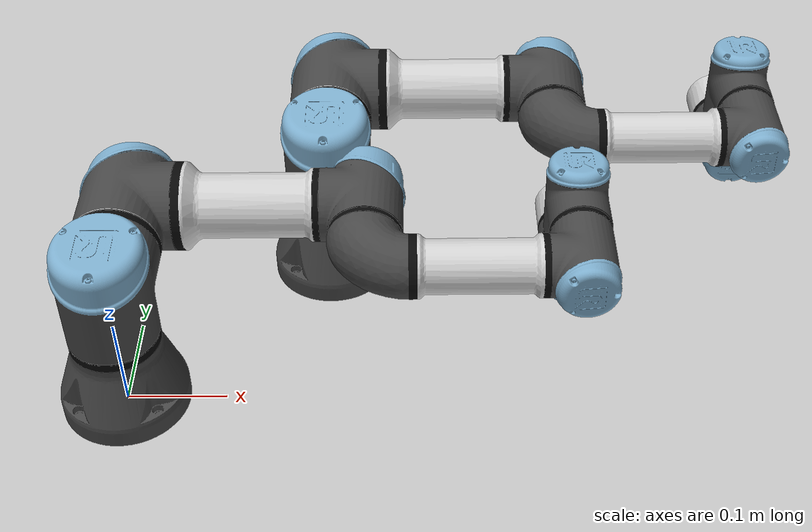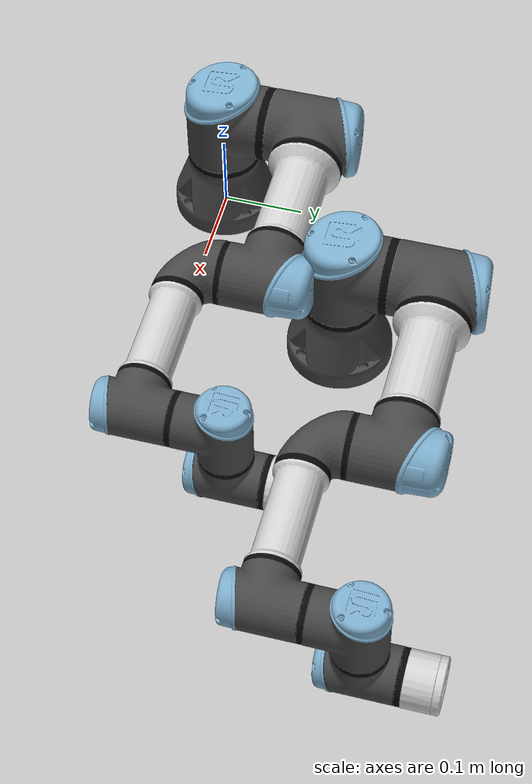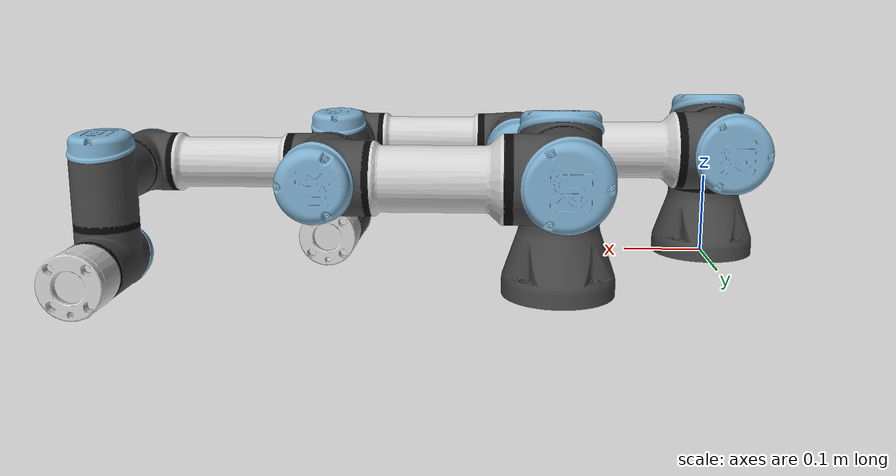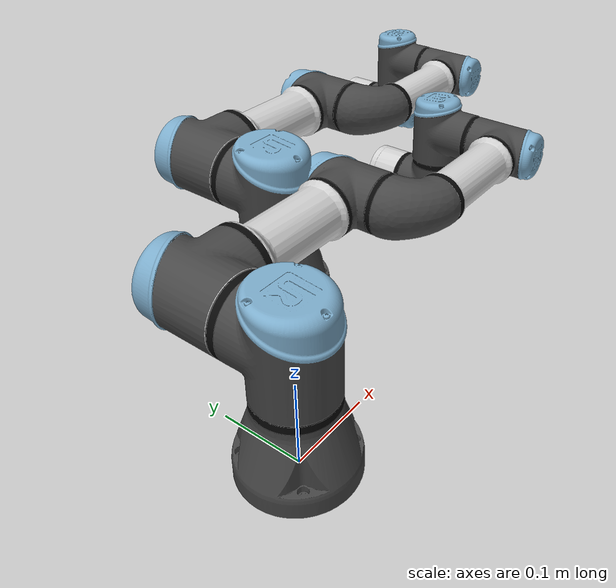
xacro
<?xml version="1.0"?>
<robot xmlns:xacro="http://www.ros.org/wiki/xacro" name="mutli_arm">
    <xacro:arg name="initial_positions_file" default="initial_positions.yaml" />

    <!-- Import mutli_arm urdf file -->
    <xacro:include filename="$(find multi_ur_description)/urdf/arm1g_transmission.urdf" />

    <!-- Import control_xacro -->
    <xacro:include filename="mutli_arm.ros2_control.xacro" />

</robot>

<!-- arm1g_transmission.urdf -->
<!-- |    This document was autogenerated by xacro from scripts/helpers/robot_description_template.xacro | -->
<!-- |    EDITING THIS FILE BY HAND IS NOT RECOMMENDED                                 | -->
<robot name="multi_arm">
  <!-- world reference frame -->
  <link name="world"/>
  <!-- Unified ros2_control for both arms -->
  <ros2_control name="multi_arm_controller_manager" type="system">
    <hardware>
      <plugin>ign_ros2_control/IgnitionSystem</plugin>
    </hardware>
    <!-- ARM 1 joints -->
    <joint name="arm1shoulder_pan_joint">
      <command_interface name="position"/>
      <command_interface name="velocity"/>
      <state_interface name="position">
        <!-- initial position for the FakeSystem and simulation -->
        <param name="initial_value">0.0</param>
      </state_interface>
      <state_interface name="velocity"/>
      <state_interface name="effort"/>
    </joint>
    <joint name="arm1shoulder_lift_joint">
      <command_interface name="position"/>
      <command_interface name="velocity"/>
      <state_interface name="position">
        <!-- initial position for the FakeSystem and simulation -->
        <param name="initial_value">-1.57</param>
      </state_interface>
      <state_interface name="velocity"/>
      <state_interface name="effort"/>
    </joint>
    <joint name="arm1elbow_joint">
      <command_interface name="position"/>
      <command_interface name="velocity"/>
      <state_interface name="position">
        <!-- initial position for the FakeSystem and simulation -->
        <param name="initial_value">0.0</param>
      </state_interface>
      <state_interface name="velocity"/>
      <state_interface name="effort"/>
    </joint>
    <joint name="arm1wrist_1_joint">
      <command_interface name="position"/>
      <command_interface name="velocity"/>
      <state_interface name="position">
        <!-- initial position for the FakeSystem and simulation -->
        <param name="initial_value">-1.57</param>
      </state_interface>
      <state_interface name="velocity"/>
      <state_interface name="effort"/>
    </joint>
    <joint name="arm1wrist_2_joint">
      <command_interface name="position"/>
      <command_interface name="velocity"/>
      <state_interface name="position">
        <!-- initial position for the FakeSystem and simulation -->
        <param name="initial_value">0.0</param>
      </state_interface>
      <state_interface name="velocity"/>
      <state_interface name="effort"/>
    </joint>
    <joint name="arm1wrist_3_joint">
      <command_interface name="position"/>
      <command_interface name="velocity"/>
      <state_interface name="position">
        <!-- initial position for the FakeSystem and simulation -->
        <param name="initial_value">0.0</param>
      </state_interface>
      <state_interface name="velocity"/>
      <state_interface name="effort"/>
    </joint>
    <!-- ARM 2 joints -->
    <joint name="arm2_shoulder_pan_joint">
      <command_interface name="position"/>
      <command_interface name="velocity"/>
      <state_interface name="position">
        <!-- initial position for the FakeSystem and simulation -->
        <param name="initial_value">0.0</param>
      </state_interface>
      <state_interface name="velocity"/>
      <state_interface name="effort"/>
    </joint>
    <joint name="arm2_shoulder_lift_joint">
      <command_interface name="position"/>
      <command_interface name="velocity"/>
      <state_interface name="position">
        <!-- initial position for the FakeSystem and simulation -->
        <param name="initial_value">-1.57</param>
      </state_interface>
      <state_interface name="velocity"/>
      <state_interface name="effort"/>
    </joint>
    <joint name="arm2_elbow_joint">
      <command_interface name="position"/>
      <command_interface name="velocity"/>
      <state_interface name="position">
        <!-- initial position for the FakeSystem and simulation -->
        <param name="initial_value">0.0</param>
      </state_interface>
      <state_interface name="velocity"/>
      <state_interface name="effort"/>
    </joint>
    <joint name="arm2_wrist_1_joint">
      <command_interface name="position"/>
      <command_interface name="velocity"/>
      <state_interface name="position">
        <!-- initial position for the FakeSystem and simulation -->
        <param name="initial_value">-1.57 </param>
      </state_interface>
      <state_interface name="velocity"/>
      <state_interface name="effort"/>
    </joint>
    <joint name="arm2_wrist_2_joint">
      <command_interface name="position"/>
      <command_interface name="velocity"/>
      <state_interface name="position">
        <!-- initial position for the FakeSystem and simulation -->
        <param name="initial_value">0.0</param>
      </state_interface>
      <state_interface name="velocity"/>
      <state_interface name="effort"/>
    </joint>
    <joint name="arm2_wrist_3_joint">
      <command_interface name="position"/>
      <command_interface name="velocity"/>
      <state_interface name="position">
        <!-- initial position for the FakeSystem and simulation -->
        <param name="initial_value">0.0</param>
      </state_interface>
      <state_interface name="velocity"/>
      <state_interface name="effort"/>
    </joint>
  </ros2_control>
  <transmission name="arm1shoulder_pan_trans">
    <type>transmission_interface/SimpleTransmission</type>
    <joint name="arm1shoulder_pan_joint">
      <hardwareInterface>hardware_interface/PositionJointInterface</hardwareInterface>
    </joint>
    <actuator name="arm1shoulder_pan_motor">
      <mechanicalReduction>1</mechanicalReduction>
    </actuator>
  </transmission>
  <transmission name="arm1shoulder_lift_trans">
    <type>transmission_interface/SimpleTransmission</type>
    <joint name="arm1shoulder_lift_joint">
      <hardwareInterface>hardware_interface/PositionJointInterface</hardwareInterface>
    </joint>
    <actuator name="arm1shoulder_lift_motor">
      <mechanicalReduction>1</mechanicalReduction>
    </actuator>
  </transmission>
  <transmission name="arm1elbow_trans">
    <type>transmission_interface/SimpleTransmission</type>
    <joint name="arm1elbow_joint">
      <hardwareInterface>hardware_interface/PositionJointInterface</hardwareInterface>
    </joint>
    <actuator name="arm1elbow_motor">
      <mechanicalReduction>1</mechanicalReduction>
    </actuator>
  </transmission>
  <transmission name="arm1wrist_1_trans">
    <type>transmission_interface/SimpleTransmission</type>
    <joint name="arm1wrist_1_joint">
      <hardwareInterface>hardware_interface/PositionJointInterface</hardwareInterface>
    </joint>
    <actuator name="arm1wrist_1_motor">
      <mechanicalReduction>1</mechanicalReduction>
    </actuator>
  </transmission>
  <transmission name="arm1wrist_2_trans">
    <type>transmission_interface/SimpleTransmission</type>
    <joint name="arm1wrist_2_joint">
      <hardwareInterface>hardware_interface/PositionJointInterface</hardwareInterface>
    </joint>
    <actuator name="arm1wrist_2_motor">
      <mechanicalReduction>1</mechanicalReduction>
    </actuator>
  </transmission>
  <transmission name="arm1wrist_3_trans">
    <type>transmission_interface/SimpleTransmission</type>
    <joint name="arm1wrist_3_joint">
      <hardwareInterface>hardware_interface/PositionJointInterface</hardwareInterface>
    </joint>
    <actuator name="arm1wrist_3_motor">
      <mechanicalReduction>1</mechanicalReduction>
    </actuator>
  </transmission>
  <!-- Placeholder for ros2_control transmission which don't yet exist -->
  <!-- links -  main serial chain -->
  <link name="arm1base_link"/>
  <link name="arm1base_link_inertia">
    <visual>
      <origin rpy="0 0 3.141592653589793" xyz="0 0 0"/>
      <geometry>
        <mesh filename="file:///home/roman/code/cps-gazebo-sim-2/install/multi_ur_description/share/multi_ur_description/meshes/ur3e/visual/base.dae"/>
      </geometry>
    </visual>
    <collision>
      <origin rpy="0 0 3.141592653589793" xyz="0 0 0"/>
      <geometry>
        <mesh filename="file:///home/roman/code/cps-gazebo-sim-2/install/multi_ur_description/share/multi_ur_description/meshes/ur3e/collision/base.stl"/>
      </geometry>
    </collision>
    <inertial>
      <mass value="2.0"/>
      <origin rpy="0 0 0" xyz="0 0 0"/>
      <inertia ixx="0.0030531654454" ixy="0.0" ixz="0.0" iyy="0.0030531654454" iyz="0.0" izz="0.005625"/>
    </inertial>
  </link>
  <link name="arm1shoulder_link">
    <visual>
      <origin rpy="0 0 3.141592653589793" xyz="0 0 0"/>
      <geometry>
        <mesh filename="file:///home/roman/code/cps-gazebo-sim-2/install/multi_ur_description/share/multi_ur_description/meshes/ur3e/visual/shoulder.dae"/>
      </geometry>
    </visual>
    <collision>
      <origin rpy="0 0 3.141592653589793" xyz="0 0 0"/>
      <geometry>
        <mesh filename="file:///home/roman/code/cps-gazebo-sim-2/install/multi_ur_description/share/multi_ur_description/meshes/ur3e/collision/shoulder.stl"/>
      </geometry>
    </collision>
    <inertial>
      <mass value="2.0"/>
      <origin rpy="0 0 0" xyz="0 0 0"/>
      <inertia ixx="0.008093163429399999" ixy="0.0" ixz="0.0" iyy="0.008093163429399999" iyz="0.0" izz="0.005625"/>
    </inertial>
  </link>
  <link name="arm1upper_arm_link">
    <visual>
      <origin rpy="1.5707963267948966 0 -1.5707963267948966" xyz="0 0 0.12"/>
      <geometry>
        <mesh filename="file:///home/roman/code/cps-gazebo-sim-2/install/multi_ur_description/share/multi_ur_description/meshes/ur3e/visual/upperarm.dae"/>
      </geometry>
    </visual>
    <collision>
      <origin rpy="1.5707963267948966 0 -1.5707963267948966" xyz="0 0 0.12"/>
      <geometry>
        <mesh filename="file:///home/roman/code/cps-gazebo-sim-2/install/multi_ur_description/share/multi_ur_description/meshes/ur3e/collision/upperarm.stl"/>
      </geometry>
    </collision>
    <inertial>
      <mass value="3.42"/>
      <origin rpy="0 1.5707963267948966 0" xyz="-0.121825 0.0 0.12"/>
      <inertia ixx="0.021728483221103233" ixy="0.0" ixz="0.0" iyy="0.021728483221103233" iyz="0.0" izz="0.00961875"/>
    </inertial>
  </link>
  <link name="arm1forearm_link">
    <visual>
      <origin rpy="1.5707963267948966 0 -1.5707963267948966" xyz="0 0 0.027"/>
      <geometry>
        <mesh filename="file:///home/roman/code/cps-gazebo-sim-2/install/multi_ur_description/share/multi_ur_description/meshes/ur3e/visual/forearm.dae"/>
      </geometry>
    </visual>
    <collision>
      <origin rpy="1.5707963267948966 0 -1.5707963267948966" xyz="0 0 0.027"/>
      <geometry>
        <mesh filename="file:///home/roman/code/cps-gazebo-sim-2/install/multi_ur_description/share/multi_ur_description/meshes/ur3e/collision/forearm.stl"/>
      </geometry>
    </collision>
    <inertial>
      <mass value="1.26"/>
      <origin rpy="0 1.5707963267948966 0" xyz="-0.1066 0.0 0.027"/>
      <inertia ixx="0.0065445675821719194" ixy="0.0" ixz="0.0" iyy="0.0065445675821719194" iyz="0.0" izz="0.00354375"/>
    </inertial>
  </link>
  <link name="arm1wrist_1_link">
    <visual>
      <origin rpy="1.5707963267948966 0 0" xyz="0 0 -0.104"/>
      <geometry>
        <mesh filename="file:///home/roman/code/cps-gazebo-sim-2/install/multi_ur_description/share/multi_ur_description/meshes/ur3e/visual/wrist1.dae"/>
      </geometry>
    </visual>
    <collision>
      <origin rpy="1.5707963267948966 0 0" xyz="0 0 -0.104"/>
      <geometry>
        <mesh filename="file:///home/roman/code/cps-gazebo-sim-2/install/multi_ur_description/share/multi_ur_description/meshes/ur3e/collision/wrist1.stl"/>
      </geometry>
    </collision>
    <inertial>
      <mass value="0.8"/>
      <origin rpy="0 0 0" xyz="0 0 0"/>
      <inertia ixx="0.002084999166" ixy="0.0" ixz="0.0" iyy="0.002084999166" iyz="0.0" izz="0.00225"/>
    </inertial>
  </link>
  <link name="arm1wrist_2_link">
    <visual>
      <origin rpy="0 0 0" xyz="0 0 -0.08535"/>
      <geometry>
        <mesh filename="file:///home/roman/code/cps-gazebo-sim-2/install/multi_ur_description/share/multi_ur_description/meshes/ur3e/visual/wrist2.dae"/>
      </geometry>
    </visual>
    <collision>
      <origin rpy="0 0 0" xyz="0 0 -0.08535"/>
      <geometry>
        <mesh filename="file:///home/roman/code/cps-gazebo-sim-2/install/multi_ur_description/share/multi_ur_description/meshes/ur3e/collision/wrist2.stl"/>
      </geometry>
    </collision>
    <inertial>
      <mass value="0.8"/>
      <origin rpy="0 0 0" xyz="0 0 0"/>
      <inertia ixx="0.002084999166" ixy="0.0" ixz="0.0" iyy="0.002084999166" iyz="0.0" izz="0.00225"/>
    </inertial>
  </link>
  <link name="arm1wrist_3_link">
    <visual>
      <origin rpy="1.5707963267948966 0 0" xyz="0 0 -0.0921"/>
      <geometry>
        <mesh filename="file:///home/roman/code/cps-gazebo-sim-2/install/multi_ur_description/share/multi_ur_description/meshes/ur3e/visual/wrist3.dae"/>
      </geometry>
    </visual>
    <collision>
      <origin rpy="1.5707963267948966 0 0" xyz="0 0 -0.0921"/>
      <geometry>
        <mesh filename="file:///home/roman/code/cps-gazebo-sim-2/install/multi_ur_description/share/multi_ur_description/meshes/ur3e/collision/wrist3.stl"/>
      </geometry>
    </collision>
    <inertial>
      <mass value="0.35"/>
      <origin rpy="0 0 0" xyz="0.0 0.0 -0.02"/>
      <inertia ixx="0.00013626661215999998" ixy="0.0" ixz="0.0" iyy="0.00013626661215999998" iyz="0.0" izz="0.0001792"/>
    </inertial>
  </link>
  <!-- base_joint fixes base_link to the environment -->
  <joint name="arm1base_joint" type="fixed">
    <origin rpy="0 0 0.0" xyz="0 0 0.0"/>
    <parent link="world"/>
    <child link="arm1base_link"/>
  </joint>
  <!-- joints - main serial chain -->
  <joint name="arm1base_link-base_link_inertia" type="fixed">
    <parent link="arm1base_link"/>
    <child link="arm1base_link_inertia"/>
    <origin rpy="0 0 3.141592653589793" xyz="0 0 0"/>
  </joint>
  <joint name="arm1shoulder_pan_joint" type="revolute">
    <parent link="arm1base_link_inertia"/>
    <child link="arm1shoulder_link"/>
    <origin rpy="0 0 0" xyz="0 0 0.15185"/>
    <axis xyz="0 0 1"/>
    <limit effort="56.0" lower="-6.283185307179586" upper="6.283185307179586" velocity="3.141592653589793"/>
    <dynamics damping="0" friction="0"/>
  </joint>
  <joint name="arm1shoulder_lift_joint" type="revolute">
    <parent link="arm1shoulder_link"/>
    <child link="arm1upper_arm_link"/>
    <origin rpy="1.570796327 0 0" xyz="0 0 0"/>
    <axis xyz="0 0 1"/>
    <limit effort="56.0" lower="-6.283185307179586" upper="6.283185307179586" velocity="3.141592653589793"/>
    <dynamics damping="0" friction="0"/>
  </joint>
  <joint name="arm1elbow_joint" type="revolute">
    <parent link="arm1upper_arm_link"/>
    <child link="arm1forearm_link"/>
    <origin rpy="0 0 0" xyz="-0.24355 0 0"/>
    <axis xyz="0 0 1"/>
    <limit effort="28.0" lower="-3.141592653589793" upper="3.141592653589793" velocity="3.141592653589793"/>
    <dynamics damping="0" friction="0"/>
  </joint>
  <joint name="arm1wrist_1_joint" type="revolute">
    <parent link="arm1forearm_link"/>
    <child link="arm1wrist_1_link"/>
    <origin rpy="0 0 0" xyz="-0.2132 0 0.13105"/>
    <axis xyz="0 0 1"/>
    <limit effort="12.0" lower="-6.283185307179586" upper="6.283185307179586" velocity="6.283185307179586"/>
    <dynamics damping="0" friction="0"/>
  </joint>
  <joint name="arm1wrist_2_joint" type="revolute">
    <parent link="arm1wrist_1_link"/>
    <child link="arm1wrist_2_link"/>
    <origin rpy="1.570796327 0 0" xyz="0 -0.08535 -1.750557762378351e-11"/>
    <axis xyz="0 0 1"/>
    <limit effort="12.0" lower="-6.283185307179586" upper="6.283185307179586" velocity="6.283185307179586"/>
    <dynamics damping="0" friction="0"/>
  </joint>
  <joint name="arm1wrist_3_joint" type="revolute">
    <parent link="arm1wrist_2_link"/>
    <child link="arm1wrist_3_link"/>
    <origin rpy="1.570796326589793 3.141592653589793 3.141592653589793" xyz="0 0.0921 -1.8890025766262e-11"/>
    <axis xyz="0 0 1"/>
    <limit effort="12.0" lower="-6.283185307179586" upper="6.283185307179586" velocity="6.283185307179586"/>
    <dynamics damping="0" friction="0"/>
  </joint>
  <link name="arm1ft_frame"/>
  <joint name="arm1wrist_3_link-ft_frame" type="fixed">
    <parent link="arm1wrist_3_link"/>
    <child link="arm1ft_frame"/>
    <origin rpy="3.141592653589793 0 0" xyz="0 0 0"/>
  </joint>
  <!-- ROS-Industrial 'base' frame - base_link to UR 'Base' Coordinates transform -->
  <link name="arm1base"/>
  <joint name="arm1base_link-base_fixed_joint" type="fixed">
    <origin rpy="0 0 3.141592653589793" xyz="0 0 0"/>
    <parent link="arm1base_link"/>
    <child link="arm1base"/>
  </joint>
  <!-- ROS-Industrial 'flange' frame - attachment point for EEF models -->
  <link name="arm1flange"/>
  <joint name="arm1wrist_3-flange" type="fixed">
    <parent link="arm1wrist_3_link"/>
    <child link="arm1flange"/>
    <origin rpy="0 -1.5707963267948966 -1.5707963267948966" xyz="0 0 0"/>
  </joint>
  <!-- ROS-Industrial 'tool0' frame - all-zeros tool frame -->
  <link name="arm1tool0"/>
  <joint name="arm1flange-tool0" type="fixed">
    <!-- default toolframe - X+ left, Y+ up, Z+ front -->
    <origin rpy="1.5707963267948966 0 1.5707963267948966" xyz="0 0 0"/>
    <parent link="arm1flange"/>
    <child link="arm1tool0"/>
  </joint>
  <transmission name="arm2_shoulder_pan_trans">
    <type>transmission_interface/SimpleTransmission</type>
    <joint name="arm2_shoulder_pan_joint">
      <hardwareInterface>hardware_interface/PositionJointInterface</hardwareInterface>
    </joint>
    <actuator name="arm2_shoulder_pan_motor">
      <mechanicalReduction>1</mechanicalReduction>
    </actuator>
  </transmission>
  <transmission name="arm2_shoulder_lift_trans">
    <type>transmission_interface/SimpleTransmission</type>
    <joint name="arm2_shoulder_lift_joint">
      <hardwareInterface>hardware_interface/PositionJointInterface</hardwareInterface>
    </joint>
    <actuator name="arm2_shoulder_lift_motor">
      <mechanicalReduction>1</mechanicalReduction>
    </actuator>
  </transmission>
  <transmission name="arm2_elbow_trans">
    <type>transmission_interface/SimpleTransmission</type>
    <joint name="arm2_elbow_joint">
      <hardwareInterface>hardware_interface/PositionJointInterface</hardwareInterface>
    </joint>
    <actuator name="arm2_elbow_motor">
      <mechanicalReduction>1</mechanicalReduction>
    </actuator>
  </transmission>
  <transmission name="arm2_wrist_1_trans">
    <type>transmission_interface/SimpleTransmission</type>
    <joint name="arm2_wrist_1_joint">
      <hardwareInterface>hardware_interface/PositionJointInterface</hardwareInterface>
    </joint>
    <actuator name="arm2_wrist_1_motor">
      <mechanicalReduction>1</mechanicalReduction>
    </actuator>
  </transmission>
  <transmission name="arm2_wrist_2_trans">
    <type>transmission_interface/SimpleTransmission</type>
    <joint name="arm2_wrist_2_joint">
      <hardwareInterface>hardware_interface/PositionJointInterface</hardwareInterface>
    </joint>
    <actuator name="arm2_wrist_2_motor">
      <mechanicalReduction>1</mechanicalReduction>
    </actuator>
  </transmission>
  <transmission name="arm2_wrist_3_trans">
    <type>transmission_interface/SimpleTransmission</type>
    <joint name="arm2_wrist_3_joint">
      <hardwareInterface>hardware_interface/PositionJointInterface</hardwareInterface>
    </joint>
    <actuator name="arm2_wrist_3_motor">
      <mechanicalReduction>1</mechanicalReduction>
    </actuator>
  </transmission>
  <!-- Placeholder for ros2_control transmission which don't yet exist -->
  <!-- links -  main serial chain -->
  <link name="arm2_base_link"/>
  <link name="arm2_base_link_inertia">
    <visual>
      <origin rpy="0 0 3.141592653589793" xyz="0 0 0"/>
      <geometry>
        <mesh filename="file:///home/roman/code/cps-gazebo-sim-2/install/multi_ur_description/share/multi_ur_description/meshes/ur3e/visual/base.dae"/>
      </geometry>
    </visual>
    <collision>
      <origin rpy="0 0 3.141592653589793" xyz="0 0 0"/>
      <geometry>
        <mesh filename="file:///home/roman/code/cps-gazebo-sim-2/install/multi_ur_description/share/multi_ur_description/meshes/ur3e/collision/base.stl"/>
      </geometry>
    </collision>
    <inertial>
      <mass value="2.0"/>
      <origin rpy="0 0 0" xyz="0 0 0"/>
      <inertia ixx="0.0030531654454" ixy="0.0" ixz="0.0" iyy="0.0030531654454" iyz="0.0" izz="0.005625"/>
    </inertial>
  </link>
  <link name="arm2_shoulder_link">
    <visual>
      <origin rpy="0 0 3.141592653589793" xyz="0 0 0"/>
      <geometry>
        <mesh filename="file:///home/roman/code/cps-gazebo-sim-2/install/multi_ur_description/share/multi_ur_description/meshes/ur3e/visual/shoulder.dae"/>
      </geometry>
    </visual>
    <collision>
      <origin rpy="0 0 3.141592653589793" xyz="0 0 0"/>
      <geometry>
        <mesh filename="file:///home/roman/code/cps-gazebo-sim-2/install/multi_ur_description/share/multi_ur_description/meshes/ur3e/collision/shoulder.stl"/>
      </geometry>
    </collision>
    <inertial>
      <mass value="2.0"/>
      <origin rpy="0 0 0" xyz="0 0 0"/>
      <inertia ixx="0.008093163429399999" ixy="0.0" ixz="0.0" iyy="0.008093163429399999" iyz="0.0" izz="0.005625"/>
    </inertial>
  </link>
  <link name="arm2_upper_arm_link">
    <visual>
      <origin rpy="1.5707963267948966 0 -1.5707963267948966" xyz="0 0 0.12"/>
      <geometry>
        <mesh filename="file:///home/roman/code/cps-gazebo-sim-2/install/multi_ur_description/share/multi_ur_description/meshes/ur3e/visual/upperarm.dae"/>
      </geometry>
    </visual>
    <collision>
      <origin rpy="1.5707963267948966 0 -1.5707963267948966" xyz="0 0 0.12"/>
      <geometry>
        <mesh filename="file:///home/roman/code/cps-gazebo-sim-2/install/multi_ur_description/share/multi_ur_description/meshes/ur3e/collision/upperarm.stl"/>
      </geometry>
    </collision>
    <inertial>
      <mass value="3.42"/>
      <origin rpy="0 1.5707963267948966 0" xyz="-0.121825 0.0 0.12"/>
      <inertia ixx="0.021728483221103233" ixy="0.0" ixz="0.0" iyy="0.021728483221103233" iyz="0.0" izz="0.00961875"/>
    </inertial>
  </link>
  <link name="arm2_forearm_link">
    <visual>
      <origin rpy="1.5707963267948966 0 -1.5707963267948966" xyz="0 0 0.027"/>
      <geometry>
        <mesh filename="file:///home/roman/code/cps-gazebo-sim-2/install/multi_ur_description/share/multi_ur_description/meshes/ur3e/visual/forearm.dae"/>
      </geometry>
    </visual>
    <collision>
      <origin rpy="1.5707963267948966 0 -1.5707963267948966" xyz="0 0 0.027"/>
      <geometry>
        <mesh filename="file:///home/roman/code/cps-gazebo-sim-2/install/multi_ur_description/share/multi_ur_description/meshes/ur3e/collision/forearm.stl"/>
      </geometry>
    </collision>
    <inertial>
      <mass value="1.26"/>
      <origin rpy="0 1.5707963267948966 0" xyz="-0.1066 0.0 0.027"/>
      <inertia ixx="0.0065445675821719194" ixy="0.0" ixz="0.0" iyy="0.0065445675821719194" iyz="0.0" izz="0.00354375"/>
    </inertial>
  </link>
  <link name="arm2_wrist_1_link">
    <visual>
      <origin rpy="1.5707963267948966 0 0" xyz="0 0 -0.104"/>
      <geometry>
        <mesh filename="file:///home/roman/code/cps-gazebo-sim-2/install/multi_ur_description/share/multi_ur_description/meshes/ur3e/visual/wrist1.dae"/>
      </geometry>
    </visual>
    <collision>
      <origin rpy="1.5707963267948966 0 0" xyz="0 0 -0.104"/>
      <geometry>
        <mesh filename="file:///home/roman/code/cps-gazebo-sim-2/install/multi_ur_description/share/multi_ur_description/meshes/ur3e/collision/wrist1.stl"/>
      </geometry>
    </collision>
    <inertial>
      <mass value="0.8"/>
      <origin rpy="0 0 0" xyz="0 0 0"/>
      <inertia ixx="0.002084999166" ixy="0.0" ixz="0.0" iyy="0.002084999166" iyz="0.0" izz="0.00225"/>
    </inertial>
  </link>
  <link name="arm2_wrist_2_link">
    <visual>
      <origin rpy="0 0 0" xyz="0 0 -0.08535"/>
      <geometry>
        <mesh filename="file:///home/roman/code/cps-gazebo-sim-2/install/multi_ur_description/share/multi_ur_description/meshes/ur3e/visual/wrist2.dae"/>
      </geometry>
    </visual>
    <collision>
      <origin rpy="0 0 0" xyz="0 0 -0.08535"/>
      <geometry>
        <mesh filename="file:///home/roman/code/cps-gazebo-sim-2/install/multi_ur_description/share/multi_ur_description/meshes/ur3e/collision/wrist2.stl"/>
      </geometry>
    </collision>
    <inertial>
      <mass value="0.8"/>
      <origin rpy="0 0 0" xyz="0 0 0"/>
      <inertia ixx="0.002084999166" ixy="0.0" ixz="0.0" iyy="0.002084999166" iyz="0.0" izz="0.00225"/>
    </inertial>
  </link>
  <link name="arm2_wrist_3_link">
    <visual>
      <origin rpy="1.5707963267948966 0 0" xyz="0 0 -0.0921"/>
      <geometry>
        <mesh filename="file:///home/roman/code/cps-gazebo-sim-2/install/multi_ur_description/share/multi_ur_description/meshes/ur3e/visual/wrist3.dae"/>
      </geometry>
    </visual>
    <collision>
      <origin rpy="1.5707963267948966 0 0" xyz="0 0 -0.0921"/>
      <geometry>
        <mesh filename="file:///home/roman/code/cps-gazebo-sim-2/install/multi_ur_description/share/multi_ur_description/meshes/ur3e/collision/wrist3.stl"/>
      </geometry>
    </collision>
    <inertial>
      <mass value="0.35"/>
      <origin rpy="0 0 0" xyz="0.0 0.0 -0.02"/>
      <inertia ixx="0.00013626661215999998" ixy="0.0" ixz="0.0" iyy="0.00013626661215999998" iyz="0.0" izz="0.0001792"/>
    </inertial>
  </link>
  <!-- base_joint fixes base_link to the environment -->
  <joint name="arm2_base_joint" type="fixed">
    <origin rpy="0 0 0.0" xyz="0.2 0.2 0.0"/>
    <parent link="world"/>
    <child link="arm2_base_link"/>
  </joint>
  <!-- joints - main serial chain -->
  <joint name="arm2_base_link-base_link_inertia" type="fixed">
    <parent link="arm2_base_link"/>
    <child link="arm2_base_link_inertia"/>
    <origin rpy="0 0 3.141592653589793" xyz="0 0 0"/>
  </joint>
  <joint name="arm2_shoulder_pan_joint" type="revolute">
    <parent link="arm2_base_link_inertia"/>
    <child link="arm2_shoulder_link"/>
    <origin rpy="0 0 0" xyz="0 0 0.15185"/>
    <axis xyz="0 0 1"/>
    <limit effort="56.0" lower="-6.283185307179586" upper="6.283185307179586" velocity="3.141592653589793"/>
    <dynamics damping="0" friction="0"/>
  </joint>
  <joint name="arm2_shoulder_lift_joint" type="revolute">
    <parent link="arm2_shoulder_link"/>
    <child link="arm2_upper_arm_link"/>
    <origin rpy="1.570796327 0 0" xyz="0 0 0"/>
    <axis xyz="0 0 1"/>
    <limit effort="56.0" lower="-6.283185307179586" upper="6.283185307179586" velocity="3.141592653589793"/>
    <dynamics damping="0" friction="0"/>
  </joint>
  <joint name="arm2_elbow_joint" type="revolute">
    <parent link="arm2_upper_arm_link"/>
    <child link="arm2_forearm_link"/>
    <origin rpy="0 0 0" xyz="-0.24355 0 0"/>
    <axis xyz="0 0 1"/>
    <limit effort="28.0" lower="-3.141592653589793" upper="3.141592653589793" velocity="3.141592653589793"/>
    <dynamics damping="0" friction="0"/>
  </joint>
  <joint name="arm2_wrist_1_joint" type="revolute">
    <parent link="arm2_forearm_link"/>
    <child link="arm2_wrist_1_link"/>
    <origin rpy="0 0 0" xyz="-0.2132 0 0.13105"/>
    <axis xyz="0 0 1"/>
    <limit effort="12.0" lower="-6.283185307179586" upper="6.283185307179586" velocity="6.283185307179586"/>
    <dynamics damping="0" friction="0"/>
  </joint>
  <joint name="arm2_wrist_2_joint" type="revolute">
    <parent link="arm2_wrist_1_link"/>
    <child link="arm2_wrist_2_link"/>
    <origin rpy="1.570796327 0 0" xyz="0 -0.08535 -1.750557762378351e-11"/>
    <axis xyz="0 0 1"/>
    <limit effort="12.0" lower="-6.283185307179586" upper="6.283185307179586" velocity="6.283185307179586"/>
    <dynamics damping="0" friction="0"/>
  </joint>
  <joint name="arm2_wrist_3_joint" type="revolute">
    <parent link="arm2_wrist_2_link"/>
    <child link="arm2_wrist_3_link"/>
    <origin rpy="1.570796326589793 3.141592653589793 3.141592653589793" xyz="0 0.0921 -1.8890025766262e-11"/>
    <axis xyz="0 0 1"/>
    <limit effort="12.0" lower="-6.283185307179586" upper="6.283185307179586" velocity="6.283185307179586"/>
    <dynamics damping="0" friction="0"/>
  </joint>
  <link name="arm2_ft_frame"/>
  <joint name="arm2_wrist_3_link-ft_frame" type="fixed">
    <parent link="arm2_wrist_3_link"/>
    <child link="arm2_ft_frame"/>
    <origin rpy="3.141592653589793 0 0" xyz="0 0 0"/>
  </joint>
  <!-- ROS-Industrial 'base' frame - base_link to UR 'Base' Coordinates transform -->
  <link name="arm2_base"/>
  <joint name="arm2_base_link-base_fixed_joint" type="fixed">
    <origin rpy="0 0 3.141592653589793" xyz="0 0 0"/>
    <parent link="arm2_base_link"/>
    <child link="arm2_base"/>
  </joint>
  <!-- ROS-Industrial 'flange' frame - attachment point for EEF models -->
  <link name="arm2_flange"/>
  <joint name="arm2_wrist_3-flange" type="fixed">
    <parent link="arm2_wrist_3_link"/>
    <child link="arm2_flange"/>
    <origin rpy="0 -1.5707963267948966 -1.5707963267948966" xyz="0 0 0"/>
  </joint>
  <!-- ROS-Industrial 'tool0' frame - all-zeros tool frame -->
  <link name="arm2_tool0"/>
  <joint name="arm2_flange-tool0" type="fixed">
    <!-- default toolframe - X+ left, Y+ up, Z+ front -->
    <origin rpy="1.5707963267948966 0 1.5707963267948966" xyz="0 0 0"/>
    <parent link="arm2_flange"/>
    <child link="arm2_tool0"/>
  </joint>
  <gazebo>
    <plugin filename="libign_ros2_control-system.so" name="ign_ros2_control::IgnitionROS2ControlPlugin">
      <parameters>/home/roman/code/cps-gazebo-sim-2/install/two_arm_moveit_config/share/two_arm_moveit_config/config/multi_arm_controllers.yaml</parameters>
    </plugin>
  </gazebo>
</robot>
